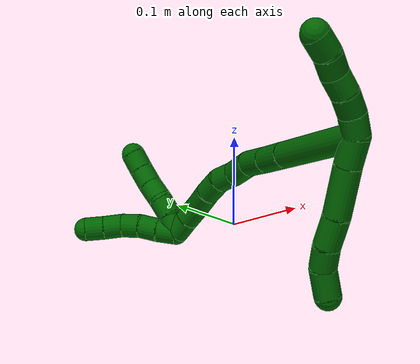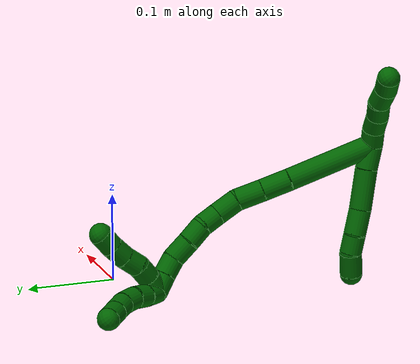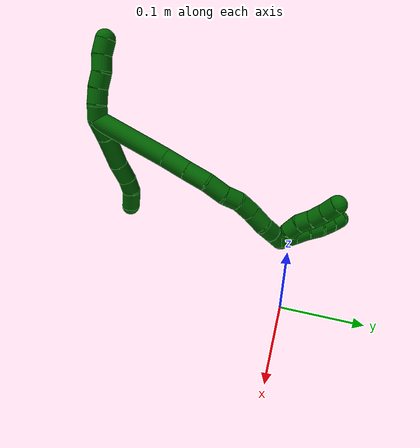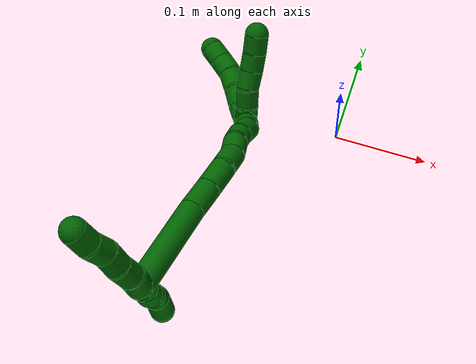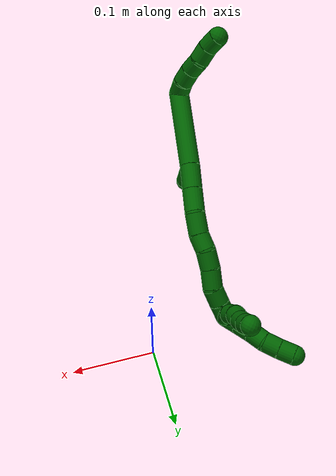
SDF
<sdf version="1.7">
 <world name="default">
  <model name="6">
   <static>0</static>
   <link name="6">
    <collision name="collision-cylinder-e_1_2_8">
     <pose>-0.00848 -0.004877 -0.009178 2.65318 -0.684362 -1.92073</pose>
     <geometry><cylinder><radius>0.0125</radius><length>0.026826</length></cylinder></geometry>
     <surface>
      <friction><ode><mu>1.16</mu><mu2>1.16</mu2><slip1>0</slip1><slip2>0</slip2></ode></friction>
      <contact><ode><kp>1e+06</kp><kd>1</kd><max_vel>0</max_vel><min_depth>0.001</min_depth></ode></contact>
     </surface>
    </collision>
    <visual name="visual-cylinder-e_1_2_8">
     <pose>-0.00848 -0.004877 -0.009178 2.65318 -0.684362 -1.92073</pose>
     <geometry><cylinder><radius>0.0125</radius><length>0.026826</length></cylinder></geometry>
     <material><ambient>0 0.392157 0.003922 1</ambient></material>
    </visual>
    <collision name="collision-cylinder-e_2_8_9">
     <pose>-0.031275 -0.019659 -0.033338 2.55744 -0.672933 -1.72145</pose>
     <geometry><cylinder><radius>0.0125</radius><length>0.045937</length></cylinder></geometry>
     <surface>
      <friction><ode><mu>1.16</mu><mu2>1.16</mu2><slip1>0</slip1><slip2>0</slip2></ode></friction>
      <contact><ode><kp>1e+06</kp><kd>1</kd><max_vel>0</max_vel><min_depth>0.001</min_depth></ode></contact>
     </surface>
    </collision>
    <visual name="visual-cylinder-e_2_8_9">
     <pose>-0.031275 -0.019659 -0.033338 2.55744 -0.672933 -1.72145</pose>
     <geometry><cylinder><radius>0.0125</radius><length>0.045937</length></cylinder></geometry>
     <material><ambient>0 0.392157 0.003922 1</ambient></material>
    </visual>
    <collision name="collision-cylinder-e_3_9_10">
     <pose>-0.055274 -0.034548 -0.057941 2.66361 -0.729369 -2.00548</pose>
     <geometry><cylinder><radius>0.0125</radius><length>0.029061</length></cylinder></geometry>
     <surface>
      <friction><ode><mu>1.16</mu><mu2>1.16</mu2><slip1>0</slip1><slip2>0</slip2></ode></friction>
      <contact><ode><kp>1e+06</kp><kd>1</kd><max_vel>0</max_vel><min_depth>0.001</min_depth></ode></contact>
     </surface>
    </collision>
    <visual name="visual-cylinder-e_3_9_10">
     <pose>-0.055274 -0.034548 -0.057941 2.66361 -0.729369 -2.00548</pose>
     <geometry><cylinder><radius>0.0125</radius><length>0.029061</length></cylinder></geometry>
     <material><ambient>0 0.392157 0.003922 1</ambient></material>
    </visual>
    <collision name="collision-cylinder-e_4_10_11">
     <pose>-0.070787 -0.043954 -0.075253 2.61981 -0.581268 -1.68419</pose>
     <geometry><cylinder><radius>0.0125</radius><length>0.021234</length></cylinder></geometry>
     <surface>
      <friction><ode><mu>1.16</mu><mu2>1.16</mu2><slip1>0</slip1><slip2>0</slip2></ode></friction>
      <contact><ode><kp>1e+06</kp><kd>1</kd><max_vel>0</max_vel><min_depth>0.001</min_depth></ode></contact>
     </surface>
    </collision>
    <visual name="visual-cylinder-e_4_10_11">
     <pose>-0.070787 -0.043954 -0.075253 2.61981 -0.581268 -1.68419</pose>
     <geometry><cylinder><radius>0.0125</radius><length>0.021234</length></cylinder></geometry>
     <material><ambient>0 0.392157 0.003922 1</ambient></material>
    </visual>
    <collision name="collision-cylinder-e_5_11_6">
     <pose>-0.081423 -0.057515 -0.091598 2.32888 -0.364864 -0.810045</pose>
     <geometry><cylinder><radius>0.0125</radius><length>0.026942</length></cylinder></geometry>
     <surface>
      <friction><ode><mu>1.16</mu><mu2>1.16</mu2><slip1>0</slip1><slip2>0</slip2></ode></friction>
      <contact><ode><kp>1e+06</kp><kd>1</kd><max_vel>0</max_vel><min_depth>0.001</min_depth></ode></contact>
     </surface>
    </collision>
    <visual name="visual-cylinder-e_5_11_6">
     <pose>-0.081423 -0.057515 -0.091598 2.32888 -0.364864 -0.810045</pose>
     <geometry><cylinder><radius>0.0125</radius><length>0.026942</length></cylinder></geometry>
     <material><ambient>0 0.392157 0.003922 1</ambient></material>
    </visual>
    <collision name="collision-cylinder-e_1_2_12">
     <pose>0.002882 0.006077 0.0074 -0.687482 0.292389 -0.105316</pose>
     <geometry><cylinder><radius>0.0125</radius><length>0.02</length></cylinder></geometry>
     <surface>
      <friction><ode><mu>1.16</mu><mu2>1.16</mu2><slip1>0</slip1><slip2>0</slip2></ode></friction>
      <contact><ode><kp>1e+06</kp><kd>1</kd><max_vel>0</max_vel><min_depth>0.001</min_depth></ode></contact>
     </surface>
    </collision>
    <visual name="visual-cylinder-e_1_2_12">
     <pose>0.002882 0.006077 0.0074 -0.687482 0.292389 -0.105316</pose>
     <geometry><cylinder><radius>0.0125</radius><length>0.02</length></cylinder></geometry>
     <material><ambient>0 0.392157 0.003922 1</ambient></material>
    </visual>
    <collision name="collision-cylinder-e_2_12_13">
     <pose>0.00653 0.017582 0.023164 -0.575786 0.076614 -0.022697</pose>
     <geometry><cylinder><radius>0.0125</radius><length>0.02</length></cylinder></geometry>
     <surface>
      <friction><ode><mu>1.16</mu><mu2>1.16</mu2><slip1>0</slip1><slip2>0</slip2></ode></friction>
      <contact><ode><kp>1e+06</kp><kd>1</kd><max_vel>0</max_vel><min_depth>0.001</min_depth></ode></contact>
     </surface>
    </collision>
    <visual name="visual-cylinder-e_2_12_13">
     <pose>0.00653 0.017582 0.023164 -0.575786 0.076614 -0.022697</pose>
     <geometry><cylinder><radius>0.0125</radius><length>0.02</length></cylinder></geometry>
     <material><ambient>0 0.392157 0.003922 1</ambient></material>
    </visual>
    <collision name="collision-cylinder-e_3_13_14">
     <pose>0.007266 0.029694 0.038966 -0.731874 -0.003006 0.001152</pose>
     <geometry><cylinder><radius>0.0125</radius><length>0.02</length></cylinder></geometry>
     <surface>
      <friction><ode><mu>1.16</mu><mu2>1.16</mu2><slip1>0</slip1><slip2>0</slip2></ode></friction>
      <contact><ode><kp>1e+06</kp><kd>1</kd><max_vel>0</max_vel><min_depth>0.001</min_depth></ode></contact>
     </surface>
    </collision>
    <visual name="visual-cylinder-e_3_13_14">
     <pose>0.007266 0.029694 0.038966 -0.731874 -0.003006 0.001152</pose>
     <geometry><cylinder><radius>0.0125</radius><length>0.02</length></cylinder></geometry>
     <material><ambient>0 0.392157 0.003922 1</ambient></material>
    </visual>
    <collision name="collision-cylinder-e_4_14_15">
     <pose>0.007522 0.040691 0.055422 -0.446277 0.028613 -0.006493</pose>
     <geometry><cylinder><radius>0.0125</radius><length>0.02</length></cylinder></geometry>
     <surface>
      <friction><ode><mu>1.16</mu><mu2>1.16</mu2><slip1>0</slip1><slip2>0</slip2></ode></friction>
      <contact><ode><kp>1e+06</kp><kd>1</kd><max_vel>0</max_vel><min_depth>0.001</min_depth></ode></contact>
     </surface>
    </collision>
    <visual name="visual-cylinder-e_4_14_15">
     <pose>0.007522 0.040691 0.055422 -0.446277 0.028613 -0.006493</pose>
     <geometry><cylinder><radius>0.0125</radius><length>0.02</length></cylinder></geometry>
     <material><ambient>0 0.392157 0.003922 1</ambient></material>
    </visual>
    <collision name="collision-cylinder-e_5_15_5">
     <pose>0.006995 0.051127 0.072304 -0.661463 -0.081387 0.027957</pose>
     <geometry><cylinder><radius>0.0125</radius><length>0.02</length></cylinder></geometry>
     <surface>
      <friction><ode><mu>1.16</mu><mu2>1.16</mu2><slip1>0</slip1><slip2>0</slip2></ode></friction>
      <contact><ode><kp>1e+06</kp><kd>1</kd><max_vel>0</max_vel><min_depth>0.001</min_depth></ode></contact>
     </surface>
    </collision>
    <visual name="visual-cylinder-e_5_15_5">
     <pose>0.006995 0.051127 0.072304 -0.661463 -0.081387 0.027957</pose>
     <geometry><cylinder><radius>0.0125</radius><length>0.02</length></cylinder></geometry>
     <material><ambient>0 0.392157 0.003922 1</ambient></material>
    </visual>
    <collision name="collision-cylinder-e_1_2_16">
     <pose>-0.018362 0.02745 -0.037693 -2.51216 -0.375138 1.05571</pose>
     <geometry><cylinder><radius>0.0125</radius><length>0.100228</length></cylinder></geometry>
     <surface>
      <friction><ode><mu>1.16</mu><mu2>1.16</mu2><slip1>0</slip1><slip2>0</slip2></ode></friction>
      <contact><ode><kp>1e+06</kp><kd>1</kd><max_vel>0</max_vel><min_depth>0.001</min_depth></ode></contact>
     </surface>
    </collision>
    <visual name="visual-cylinder-e_1_2_16">
     <pose>-0.018362 0.02745 -0.037693 -2.51216 -0.375138 1.05571</pose>
     <geometry><cylinder><radius>0.0125</radius><length>0.100228</length></cylinder></geometry>
     <material><ambient>0 0.392157 0.003922 1</ambient></material>
    </visual>
    <collision name="collision-cylinder-e_2_16_17">
     <pose>-0.041928 0.063525 -0.087747 -2.53237 -0.332464 0.980424</pose>
     <geometry><cylinder><radius>0.0125</radius><length>0.031893</length></cylinder></geometry>
     <surface>
      <friction><ode><mu>1.16</mu><mu2>1.16</mu2><slip1>0</slip1><slip2>0</slip2></ode></friction>
      <contact><ode><kp>1e+06</kp><kd>1</kd><max_vel>0</max_vel><min_depth>0.001</min_depth></ode></contact>
     </surface>
    </collision>
    <visual name="visual-cylinder-e_2_16_17">
     <pose>-0.041928 0.063525 -0.087747 -2.53237 -0.332464 0.980424</pose>
     <geometry><cylinder><radius>0.0125</radius><length>0.031893</length></cylinder></geometry>
     <material><ambient>0 0.392157 0.003922 1</ambient></material>
    </visual>
    <collision name="collision-cylinder-e_3_17_18">
     <pose>-0.052098 0.080693 -0.111747 -2.50838 -0.331267 0.943588</pose>
     <geometry><cylinder><radius>0.0125</radius><length>0.030534</length></cylinder></geometry>
     <surface>
      <friction><ode><mu>1.16</mu><mu2>1.16</mu2><slip1>0</slip1><slip2>0</slip2></ode></friction>
      <contact><ode><kp>1e+06</kp><kd>1</kd><max_vel>0</max_vel><min_depth>0.001</min_depth></ode></contact>
     </surface>
    </collision>
    <visual name="visual-cylinder-e_3_17_18">
     <pose>-0.052098 0.080693 -0.111747 -2.50838 -0.331267 0.943588</pose>
     <geometry><cylinder><radius>0.0125</radius><length>0.030534</length></cylinder></geometry>
     <material><ambient>0 0.392157 0.003922 1</ambient></material>
    </visual>
    <collision name="collision-cylinder-e_4_18_19">
     <pose>-0.063801 0.094046 -0.133989 -2.7158 -0.524522 1.78568</pose>
     <geometry><cylinder><radius>0.0125</radius><length>0.026905</length></cylinder></geometry>
     <surface>
      <friction><ode><mu>1.16</mu><mu2>1.16</mu2><slip1>0</slip1><slip2>0</slip2></ode></friction>
      <contact><ode><kp>1e+06</kp><kd>1</kd><max_vel>0</max_vel><min_depth>0.001</min_depth></ode></contact>
     </surface>
    </collision>
    <visual name="visual-cylinder-e_4_18_19">
     <pose>-0.063801 0.094046 -0.133989 -2.7158 -0.524522 1.78568</pose>
     <geometry><cylinder><radius>0.0125</radius><length>0.026905</length></cylinder></geometry>
     <material><ambient>0 0.392157 0.003922 1</ambient></material>
    </visual>
    <collision name="collision-cylinder-e_5_19_20">
     <pose>-0.077299 0.10352 -0.151169 -2.52453 -0.697901 1.70284</pose>
     <geometry><cylinder><radius>0.0125</radius><length>0.021045</length></cylinder></geometry>
     <surface>
      <friction><ode><mu>1.16</mu><mu2>1.16</mu2><slip1>0</slip1><slip2>0</slip2></ode></friction>
      <contact><ode><kp>1e+06</kp><kd>1</kd><max_vel>0</max_vel><min_depth>0.001</min_depth></ode></contact>
     </surface>
    </collision>
    <visual name="visual-cylinder-e_5_19_20">
     <pose>-0.077299 0.10352 -0.151169 -2.52453 -0.697901 1.70284</pose>
     <geometry><cylinder><radius>0.0125</radius><length>0.021045</length></cylinder></geometry>
     <material><ambient>0 0.392157 0.003922 1</ambient></material>
    </visual>
    <collision name="collision-cylinder-e_6_20_21">
     <pose>-0.091291 0.110055 -0.166446 -2.92991 -0.682188 2.55998</pose>
     <geometry><cylinder><radius>0.0125</radius><length>0.022933</length></cylinder></geometry>
     <surface>
      <friction><ode><mu>1.16</mu><mu2>1.16</mu2><slip1>0</slip1><slip2>0</slip2></ode></friction>
      <contact><ode><kp>1e+06</kp><kd>1</kd><max_vel>0</max_vel><min_depth>0.001</min_depth></ode></contact>
     </surface>
    </collision>
    <visual name="visual-cylinder-e_6_20_21">
     <pose>-0.091291 0.110055 -0.166446 -2.92991 -0.682188 2.55998</pose>
     <geometry><cylinder><radius>0.0125</radius><length>0.022933</length></cylinder></geometry>
     <material><ambient>0 0.392157 0.003922 1</ambient></material>
    </visual>
    <collision name="collision-cylinder-e_7_21_22">
     <pose>-0.105222 0.113646 -0.185507 -2.977 -0.568013 2.59079</pose>
     <geometry><cylinder><radius>0.0125</radius><length>0.024916</length></cylinder></geometry>
     <surface>
      <friction><ode><mu>1.16</mu><mu2>1.16</mu2><slip1>0</slip1><slip2>0</slip2></ode></friction>
      <contact><ode><kp>1e+06</kp><kd>1</kd><max_vel>0</max_vel><min_depth>0.001</min_depth></ode></contact>
     </surface>
    </collision>
    <visual name="visual-cylinder-e_7_21_22">
     <pose>-0.105222 0.113646 -0.185507 -2.977 -0.568013 2.59079</pose>
     <geometry><cylinder><radius>0.0125</radius><length>0.024916</length></cylinder></geometry>
     <material><ambient>0 0.392157 0.003922 1</ambient></material>
    </visual>
    <collision name="collision-cylinder-e_8_22_23">
     <pose>-0.120133 0.115809 -0.202453 -3.07456 -0.893587 3.00186</pose>
     <geometry><cylinder><radius>0.0125</radius><length>0.021069</length></cylinder></geometry>
     <surface>
      <friction><ode><mu>1.16</mu><mu2>1.16</mu2><slip1>0</slip1><slip2>0</slip2></ode></friction>
      <contact><ode><kp>1e+06</kp><kd>1</kd><max_vel>0</max_vel><min_depth>0.001</min_depth></ode></contact>
     </surface>
    </collision>
    <visual name="visual-cylinder-e_8_22_23">
     <pose>-0.120133 0.115809 -0.202453 -3.07456 -0.893587 3.00186</pose>
     <geometry><cylinder><radius>0.0125</radius><length>0.021069</length></cylinder></geometry>
     <material><ambient>0 0.392157 0.003922 1</ambient></material>
    </visual>
    <collision name="collision-cylinder-e_9_23_1">
     <pose>-0.136492 0.116199 -0.215239 3.13311 -0.920378 -3.12448</pose>
     <geometry><cylinder><radius>0.0125</radius><length>0.020478</length></cylinder></geometry>
     <surface>
      <friction><ode><mu>1.16</mu><mu2>1.16</mu2><slip1>0</slip1><slip2>0</slip2></ode></friction>
      <contact><ode><kp>1e+06</kp><kd>1</kd><max_vel>0</max_vel><min_depth>0.001</min_depth></ode></contact>
     </surface>
    </collision>
    <visual name="visual-cylinder-e_9_23_1">
     <pose>-0.136492 0.116199 -0.215239 3.13311 -0.920378 -3.12448</pose>
     <geometry><cylinder><radius>0.0125</radius><length>0.020478</length></cylinder></geometry>
     <material><ambient>0 0.392157 0.003922 1</ambient></material>
    </visual>
    <collision name="collision-cylinder-e_1_1_24">
     <pose>-0.141924 0.125082 -0.217865 -1.19035 0.275102 -0.186903</pose>
     <geometry><cylinder><radius>0.0125</radius><length>0.02</length></cylinder></geometry>
     <surface>
      <friction><ode><mu>1.16</mu><mu2>1.16</mu2><slip1>0</slip1><slip2>0</slip2></ode></friction>
      <contact><ode><kp>1e+06</kp><kd>1</kd><max_vel>0</max_vel><min_depth>0.001</min_depth></ode></contact>
     </surface>
    </collision>
    <visual name="visual-cylinder-e_1_1_24">
     <pose>-0.141924 0.125082 -0.217865 -1.19035 0.275102 -0.186903</pose>
     <geometry><cylinder><radius>0.0125</radius><length>0.02</length></cylinder></geometry>
     <material><ambient>0 0.392157 0.003922 1</ambient></material>
    </visual>
    <collision name="collision-cylinder-e_2_24_25">
     <pose>-0.138257 0.143628 -0.211695 -1.30692 0.095131 -0.072863</pose>
     <geometry><cylinder><radius>0.0125</radius><length>0.02</length></cylinder></geometry>
     <surface>
      <friction><ode><mu>1.16</mu><mu2>1.16</mu2><slip1>0</slip1><slip2>0</slip2></ode></friction>
      <contact><ode><kp>1e+06</kp><kd>1</kd><max_vel>0</max_vel><min_depth>0.001</min_depth></ode></contact>
     </surface>
    </collision>
    <visual name="visual-cylinder-e_2_24_25">
     <pose>-0.138257 0.143628 -0.211695 -1.30692 0.095131 -0.072863</pose>
     <geometry><cylinder><radius>0.0125</radius><length>0.02</length></cylinder></geometry>
     <material><ambient>0 0.392157 0.003922 1</ambient></material>
    </visual>
    <collision name="collision-cylinder-e_3_25_26">
     <pose>-0.13673 0.163214 -0.209475 -1.60853 0.057786 -0.060008</pose>
     <geometry><cylinder><radius>0.0125</radius><length>0.02</length></cylinder></geometry>
     <surface>
      <friction><ode><mu>1.16</mu><mu2>1.16</mu2><slip1>0</slip1><slip2>0</slip2></ode></friction>
      <contact><ode><kp>1e+06</kp><kd>1</kd><max_vel>0</max_vel><min_depth>0.001</min_depth></ode></contact>
     </surface>
    </collision>
    <visual name="visual-cylinder-e_3_25_26">
     <pose>-0.13673 0.163214 -0.209475 -1.60853 0.057786 -0.060008</pose>
     <geometry><cylinder><radius>0.0125</radius><length>0.02</length></cylinder></geometry>
     <material><ambient>0 0.392157 0.003922 1</ambient></material>
    </visual>
    <collision name="collision-cylinder-e_4_26_27">
     <pose>-0.134929 0.183069 -0.208896 -1.4744 0.12265 -0.111387</pose>
     <geometry><cylinder><radius>0.0125</radius><length>0.02</length></cylinder></geometry>
     <surface>
      <friction><ode><mu>1.16</mu><mu2>1.16</mu2><slip1>0</slip1><slip2>0</slip2></ode></friction>
      <contact><ode><kp>1e+06</kp><kd>1</kd><max_vel>0</max_vel><min_depth>0.001</min_depth></ode></contact>
     </surface>
    </collision>
    <visual name="visual-cylinder-e_4_26_27">
     <pose>-0.134929 0.183069 -0.208896 -1.4744 0.12265 -0.111387</pose>
     <geometry><cylinder><radius>0.0125</radius><length>0.02</length></cylinder></geometry>
     <material><ambient>0 0.392157 0.003922 1</ambient></material>
    </visual>
    <collision name="collision-cylinder-e_5_27_4">
     <pose>-0.132192 0.202649 -0.206043 -1.37755 0.151901 -0.125134</pose>
     <geometry><cylinder><radius>0.0125</radius><length>0.02</length></cylinder></geometry>
     <surface>
      <friction><ode><mu>1.16</mu><mu2>1.16</mu2><slip1>0</slip1><slip2>0</slip2></ode></friction>
      <contact><ode><kp>1e+06</kp><kd>1</kd><max_vel>0</max_vel><min_depth>0.001</min_depth></ode></contact>
     </surface>
    </collision>
    <visual name="visual-cylinder-e_5_27_4">
     <pose>-0.132192 0.202649 -0.206043 -1.37755 0.151901 -0.125134</pose>
     <geometry><cylinder><radius>0.0125</radius><length>0.02</length></cylinder></geometry>
     <material><ambient>0 0.392157 0.003922 1</ambient></material>
    </visual>
    <collision name="collision-cylinder-e_1_1_28">
     <pose>-0.151386 0.123527 -0.221581 -1.59012 -0.740349 0.753476</pose>
     <geometry><cylinder><radius>0.0125</radius><length>0.02</length></cylinder></geometry>
     <surface>
      <friction><ode><mu>1.16</mu><mu2>1.16</mu2><slip1>0</slip1><slip2>0</slip2></ode></friction>
      <contact><ode><kp>1e+06</kp><kd>1</kd><max_vel>0</max_vel><min_depth>0.001</min_depth></ode></contact>
     </surface>
    </collision>
    <visual name="visual-cylinder-e_1_1_28">
     <pose>-0.151386 0.123527 -0.221581 -1.59012 -0.740349 0.753476</pose>
     <geometry><cylinder><radius>0.0125</radius><length>0.02</length></cylinder></geometry>
     <material><ambient>0 0.392157 0.003922 1</ambient></material>
    </visual>
    <collision name="collision-cylinder-e_2_28_29">
     <pose>-0.164148 0.138894 -0.221863 -1.58828 -0.645664 0.656257</pose>
     <geometry><cylinder><radius>0.0125</radius><length>0.02</length></cylinder></geometry>
     <surface>
      <friction><ode><mu>1.16</mu><mu2>1.16</mu2><slip1>0</slip1><slip2>0</slip2></ode></friction>
      <contact><ode><kp>1e+06</kp><kd>1</kd><max_vel>0</max_vel><min_depth>0.001</min_depth></ode></contact>
     </surface>
    </collision>
    <visual name="visual-cylinder-e_2_28_29">
     <pose>-0.164148 0.138894 -0.221863 -1.58828 -0.645664 0.656257</pose>
     <geometry><cylinder><radius>0.0125</radius><length>0.02</length></cylinder></geometry>
     <material><ambient>0 0.392157 0.003922 1</ambient></material>
    </visual>
    <collision name="collision-cylinder-e_3_29_30">
     <pose>-0.177417 0.153691 -0.22301 -1.71749 -0.811296 0.923432</pose>
     <geometry><cylinder><radius>0.0125</radius><length>0.02</length></cylinder></geometry>
     <surface>
      <friction><ode><mu>1.16</mu><mu2>1.16</mu2><slip1>0</slip1><slip2>0</slip2></ode></friction>
      <contact><ode><kp>1e+06</kp><kd>1</kd><max_vel>0</max_vel><min_depth>0.001</min_depth></ode></contact>
     </surface>
    </collision>
    <visual name="visual-cylinder-e_3_29_30">
     <pose>-0.177417 0.153691 -0.22301 -1.71749 -0.811296 0.923432</pose>
     <geometry><cylinder><radius>0.0125</radius><length>0.02</length></cylinder></geometry>
     <material><ambient>0 0.392157 0.003922 1</ambient></material>
    </visual>
    <collision name="collision-cylinder-e_4_30_31">
     <pose>-0.193266 0.165599 -0.22367 -1.50308 -1.03467 0.97744</pose>
     <geometry><cylinder><radius>0.0125</radius><length>0.02</length></cylinder></geometry>
     <surface>
      <friction><ode><mu>1.16</mu><mu2>1.16</mu2><slip1>0</slip1><slip2>0</slip2></ode></friction>
      <contact><ode><kp>1e+06</kp><kd>1</kd><max_vel>0</max_vel><min_depth>0.001</min_depth></ode></contact>
     </surface>
    </collision>
    <visual name="visual-cylinder-e_4_30_31">
     <pose>-0.193266 0.165599 -0.22367 -1.50308 -1.03467 0.97744</pose>
     <geometry><cylinder><radius>0.0125</radius><length>0.02</length></cylinder></geometry>
     <material><ambient>0 0.392157 0.003922 1</ambient></material>
    </visual>
    <collision name="collision-cylinder-e_5_31_3">
     <pose>-0.210336 0.175919 -0.22236 -1.38819 -1.01085 0.863161</pose>
     <geometry><cylinder><radius>0.0125</radius><length>0.02</length></cylinder></geometry>
     <surface>
      <friction><ode><mu>1.16</mu><mu2>1.16</mu2><slip1>0</slip1><slip2>0</slip2></ode></friction>
      <contact><ode><kp>1e+06</kp><kd>1</kd><max_vel>0</max_vel><min_depth>0.001</min_depth></ode></contact>
     </surface>
    </collision>
    <visual name="visual-cylinder-e_5_31_3">
     <pose>-0.210336 0.175919 -0.22236 -1.38819 -1.01085 0.863161</pose>
     <geometry><cylinder><radius>0.0125</radius><length>0.02</length></cylinder></geometry>
     <material><ambient>0 0.392157 0.003922 1</ambient></material>
    </visual>
    <collision name="collision-sphere-3">
     <pose>-0.218809 0.181142 -0.221396 0 -0 0</pose>
     <geometry><sphere><radius>0.0125</radius></sphere></geometry>
     <surface>
      <friction><ode><mu>1.16</mu><mu2>1.16</mu2><slip1>0</slip1><slip2>0</slip2></ode></friction>
      <contact><ode><kp>1e+06</kp><kd>1</kd><max_vel>0</max_vel><min_depth>0.001</min_depth></ode></contact>
     </surface>
    </collision>
    <visual name="visual-sphere-3">
     <pose>-0.218809 0.181142 -0.221396 0 -0 0</pose>
     <geometry><sphere><radius>0.0125</radius></sphere></geometry>
     <material><ambient>0 0.392157 0.003922 1</ambient></material>
    </visual>
    <collision name="collision-sphere-31">
     <pose>-0.201863 0.170696 -0.223325 0 -0 0</pose>
     <geometry><sphere><radius>0.0125</radius></sphere></geometry>
     <surface>
      <friction><ode><mu>1.16</mu><mu2>1.16</mu2><slip1>0</slip1><slip2>0</slip2></ode></friction>
      <contact><ode><kp>1e+06</kp><kd>1</kd><max_vel>0</max_vel><min_depth>0.001</min_depth></ode></contact>
     </surface>
    </collision>
    <visual name="visual-sphere-31">
     <pose>-0.201863 0.170696 -0.223325 0 -0 0</pose>
     <geometry><sphere><radius>0.0125</radius></sphere></geometry>
     <material><ambient>0 0.392157 0.003922 1</ambient></material>
    </visual>
    <collision name="collision-sphere-30">
     <pose>-0.184669 0.160503 -0.224016 0 -0 0</pose>
     <geometry><sphere><radius>0.0125</radius></sphere></geometry>
     <surface>
      <friction><ode><mu>1.16</mu><mu2>1.16</mu2><slip1>0</slip1><slip2>0</slip2></ode></friction>
      <contact><ode><kp>1e+06</kp><kd>1</kd><max_vel>0</max_vel><min_depth>0.001</min_depth></ode></contact>
     </surface>
    </collision>
    <visual name="visual-sphere-30">
     <pose>-0.184669 0.160503 -0.224016 0 -0 0</pose>
     <geometry><sphere><radius>0.0125</radius></sphere></geometry>
     <material><ambient>0 0.392157 0.003922 1</ambient></material>
    </visual>
    <collision name="collision-sphere-29">
     <pose>-0.170166 0.14688 -0.222003 0 -0 0</pose>
     <geometry><sphere><radius>0.0125</radius></sphere></geometry>
     <surface>
      <friction><ode><mu>1.16</mu><mu2>1.16</mu2><slip1>0</slip1><slip2>0</slip2></ode></friction>
      <contact><ode><kp>1e+06</kp><kd>1</kd><max_vel>0</max_vel><min_depth>0.001</min_depth></ode></contact>
     </surface>
    </collision>
    <visual name="visual-sphere-29">
     <pose>-0.170166 0.14688 -0.222003 0 -0 0</pose>
     <geometry><sphere><radius>0.0125</radius></sphere></geometry>
     <material><ambient>0 0.392157 0.003922 1</ambient></material>
    </visual>
    <collision name="collision-sphere-28">
     <pose>-0.158131 0.130908 -0.221724 0 -0 0</pose>
     <geometry><sphere><radius>0.0125</radius></sphere></geometry>
     <surface>
      <friction><ode><mu>1.16</mu><mu2>1.16</mu2><slip1>0</slip1><slip2>0</slip2></ode></friction>
      <contact><ode><kp>1e+06</kp><kd>1</kd><max_vel>0</max_vel><min_depth>0.001</min_depth></ode></contact>
     </surface>
    </collision>
    <visual name="visual-sphere-28">
     <pose>-0.158131 0.130908 -0.221724 0 -0 0</pose>
     <geometry><sphere><radius>0.0125</radius></sphere></geometry>
     <material><ambient>0 0.392157 0.003922 1</ambient></material>
    </visual>
    <collision name="collision-sphere-4">
     <pose>-0.130679 0.21235 -0.204144 0 -0 0</pose>
     <geometry><sphere><radius>0.0125</radius></sphere></geometry>
     <surface>
      <friction><ode><mu>1.16</mu><mu2>1.16</mu2><slip1>0</slip1><slip2>0</slip2></ode></friction>
      <contact><ode><kp>1e+06</kp><kd>1</kd><max_vel>0</max_vel><min_depth>0.001</min_depth></ode></contact>
     </surface>
    </collision>
    <visual name="visual-sphere-4">
     <pose>-0.130679 0.21235 -0.204144 0 -0 0</pose>
     <geometry><sphere><radius>0.0125</radius></sphere></geometry>
     <material><ambient>0 0.392157 0.003922 1</ambient></material>
    </visual>
    <collision name="collision-sphere-27">
     <pose>-0.133706 0.192948 -0.207941 0 -0 0</pose>
     <geometry><sphere><radius>0.0125</radius></sphere></geometry>
     <surface>
      <friction><ode><mu>1.16</mu><mu2>1.16</mu2><slip1>0</slip1><slip2>0</slip2></ode></friction>
      <contact><ode><kp>1e+06</kp><kd>1</kd><max_vel>0</max_vel><min_depth>0.001</min_depth></ode></contact>
     </surface>
    </collision>
    <visual name="visual-sphere-27">
     <pose>-0.133706 0.192948 -0.207941 0 -0 0</pose>
     <geometry><sphere><radius>0.0125</radius></sphere></geometry>
     <material><ambient>0 0.392157 0.003922 1</ambient></material>
    </visual>
    <collision name="collision-sphere-26">
     <pose>-0.136152 0.173191 -0.209852 0 -0 0</pose>
     <geometry><sphere><radius>0.0125</radius></sphere></geometry>
     <surface>
      <friction><ode><mu>1.16</mu><mu2>1.16</mu2><slip1>0</slip1><slip2>0</slip2></ode></friction>
      <contact><ode><kp>1e+06</kp><kd>1</kd><max_vel>0</max_vel><min_depth>0.001</min_depth></ode></contact>
     </surface>
    </collision>
    <visual name="visual-sphere-26">
     <pose>-0.136152 0.173191 -0.209852 0 -0 0</pose>
     <geometry><sphere><radius>0.0125</radius></sphere></geometry>
     <material><ambient>0 0.392157 0.003922 1</ambient></material>
    </visual>
    <collision name="collision-sphere-25">
     <pose>-0.137308 0.153238 -0.209098 0 -0 0</pose>
     <geometry><sphere><radius>0.0125</radius></sphere></geometry>
     <surface>
      <friction><ode><mu>1.16</mu><mu2>1.16</mu2><slip1>0</slip1><slip2>0</slip2></ode></friction>
      <contact><ode><kp>1e+06</kp><kd>1</kd><max_vel>0</max_vel><min_depth>0.001</min_depth></ode></contact>
     </surface>
    </collision>
    <visual name="visual-sphere-25">
     <pose>-0.137308 0.153238 -0.209098 0 -0 0</pose>
     <geometry><sphere><radius>0.0125</radius></sphere></geometry>
     <material><ambient>0 0.392157 0.003922 1</ambient></material>
    </visual>
    <collision name="collision-sphere-24">
     <pose>-0.139207 0.134018 -0.214291 0 -0 0</pose>
     <geometry><sphere><radius>0.0125</radius></sphere></geometry>
     <surface>
      <friction><ode><mu>1.16</mu><mu2>1.16</mu2><slip1>0</slip1><slip2>0</slip2></ode></friction>
      <contact><ode><kp>1e+06</kp><kd>1</kd><max_vel>0</max_vel><min_depth>0.001</min_depth></ode></contact>
     </surface>
    </collision>
    <visual name="visual-sphere-24">
     <pose>-0.139207 0.134018 -0.214291 0 -0 0</pose>
     <geometry><sphere><radius>0.0125</radius></sphere></geometry>
     <material><ambient>0 0.392157 0.003922 1</ambient></material>
    </visual>
    <collision name="collision-sphere-1">
     <pose>-0.14464 0.116146 -0.221439 0 -0 0</pose>
     <geometry><sphere><radius>0.0125</radius></sphere></geometry>
     <surface>
      <friction><ode><mu>1.16</mu><mu2>1.16</mu2><slip1>0</slip1><slip2>0</slip2></ode></friction>
      <contact><ode><kp>1e+06</kp><kd>1</kd><max_vel>0</max_vel><min_depth>0.001</min_depth></ode></contact>
     </surface>
    </collision>
    <visual name="visual-sphere-1">
     <pose>-0.14464 0.116146 -0.221439 0 -0 0</pose>
     <geometry><sphere><radius>0.0125</radius></sphere></geometry>
     <material><ambient>0 0.392157 0.003922 1</ambient></material>
    </visual>
    <collision name="collision-sphere-23">
     <pose>-0.128343 0.116251 -0.209039 0 -0 0</pose>
     <geometry><sphere><radius>0.0125</radius></sphere></geometry>
     <surface>
      <friction><ode><mu>1.16</mu><mu2>1.16</mu2><slip1>0</slip1><slip2>0</slip2></ode></friction>
      <contact><ode><kp>1e+06</kp><kd>1</kd><max_vel>0</max_vel><min_depth>0.001</min_depth></ode></contact>
     </surface>
    </collision>
    <visual name="visual-sphere-23">
     <pose>-0.128343 0.116251 -0.209039 0 -0 0</pose>
     <geometry><sphere><radius>0.0125</radius></sphere></geometry>
     <material><ambient>0 0.392157 0.003922 1</ambient></material>
    </visual>
    <collision name="collision-sphere-22">
     <pose>-0.111924 0.115367 -0.195867 0 -0 0</pose>
     <geometry><sphere><radius>0.0125</radius></sphere></geometry>
     <surface>
      <friction><ode><mu>1.16</mu><mu2>1.16</mu2><slip1>0</slip1><slip2>0</slip2></ode></friction>
      <contact><ode><kp>1e+06</kp><kd>1</kd><max_vel>0</max_vel><min_depth>0.001</min_depth></ode></contact>
     </surface>
    </collision>
    <visual name="visual-sphere-22">
     <pose>-0.111924 0.115367 -0.195867 0 -0 0</pose>
     <geometry><sphere><radius>0.0125</radius></sphere></geometry>
     <material><ambient>0 0.392157 0.003922 1</ambient></material>
    </visual>
    <collision name="collision-sphere-21">
     <pose>-0.09852 0.111925 -0.175147 0 -0 0</pose>
     <geometry><sphere><radius>0.0125</radius></sphere></geometry>
     <surface>
      <friction><ode><mu>1.16</mu><mu2>1.16</mu2><slip1>0</slip1><slip2>0</slip2></ode></friction>
      <contact><ode><kp>1e+06</kp><kd>1</kd><max_vel>0</max_vel><min_depth>0.001</min_depth></ode></contact>
     </surface>
    </collision>
    <visual name="visual-sphere-21">
     <pose>-0.09852 0.111925 -0.175147 0 -0 0</pose>
     <geometry><sphere><radius>0.0125</radius></sphere></geometry>
     <material><ambient>0 0.392157 0.003922 1</ambient></material>
    </visual>
    <collision name="collision-sphere-6">
     <pose>-0.08623 -0.066653 -0.10025 0 -0 0</pose>
     <geometry><sphere><radius>0.0125</radius></sphere></geometry>
     <surface>
      <friction><ode><mu>1.16</mu><mu2>1.16</mu2><slip1>0</slip1><slip2>0</slip2></ode></friction>
      <contact><ode><kp>1e+06</kp><kd>1</kd><max_vel>0</max_vel><min_depth>0.001</min_depth></ode></contact>
     </surface>
    </collision>
    <visual name="visual-sphere-6">
     <pose>-0.08623 -0.066653 -0.10025 0 -0 0</pose>
     <geometry><sphere><radius>0.0125</radius></sphere></geometry>
     <material><ambient>0 0.392157 0.003922 1</ambient></material>
    </visual>
    <collision name="collision-sphere-11">
     <pose>-0.076616 -0.048377 -0.082946 0 -0 0</pose>
     <geometry><sphere><radius>0.0125</radius></sphere></geometry>
     <surface>
      <friction><ode><mu>1.16</mu><mu2>1.16</mu2><slip1>0</slip1><slip2>0</slip2></ode></friction>
      <contact><ode><kp>1e+06</kp><kd>1</kd><max_vel>0</max_vel><min_depth>0.001</min_depth></ode></contact>
     </surface>
    </collision>
    <visual name="visual-sphere-11">
     <pose>-0.076616 -0.048377 -0.082946 0 -0 0</pose>
     <geometry><sphere><radius>0.0125</radius></sphere></geometry>
     <material><ambient>0 0.392157 0.003922 1</ambient></material>
    </visual>
    <collision name="collision-sphere-10">
     <pose>-0.064957 -0.039531 -0.067561 0 -0 0</pose>
     <geometry><sphere><radius>0.0125</radius></sphere></geometry>
     <surface>
      <friction><ode><mu>1.16</mu><mu2>1.16</mu2><slip1>0</slip1><slip2>0</slip2></ode></friction>
      <contact><ode><kp>1e+06</kp><kd>1</kd><max_vel>0</max_vel><min_depth>0.001</min_depth></ode></contact>
     </surface>
    </collision>
    <visual name="visual-sphere-10">
     <pose>-0.064957 -0.039531 -0.067561 0 -0 0</pose>
     <geometry><sphere><radius>0.0125</radius></sphere></geometry>
     <material><ambient>0 0.392157 0.003922 1</ambient></material>
    </visual>
    <collision name="collision-sphere-9">
     <pose>-0.045591 -0.029564 -0.048321 0 -0 0</pose>
     <geometry><sphere><radius>0.0125</radius></sphere></geometry>
     <surface>
      <friction><ode><mu>1.16</mu><mu2>1.16</mu2><slip1>0</slip1><slip2>0</slip2></ode></friction>
      <contact><ode><kp>1e+06</kp><kd>1</kd><max_vel>0</max_vel><min_depth>0.001</min_depth></ode></contact>
     </surface>
    </collision>
    <visual name="visual-sphere-9">
     <pose>-0.045591 -0.029564 -0.048321 0 -0 0</pose>
     <geometry><sphere><radius>0.0125</radius></sphere></geometry>
     <material><ambient>0 0.392157 0.003922 1</ambient></material>
    </visual>
    <collision name="collision-sphere-2">
     <geometry><sphere><radius>0.0125</radius></sphere></geometry>
     <surface>
      <friction><ode><mu>1.16</mu><mu2>1.16</mu2><slip1>0</slip1><slip2>0</slip2></ode></friction>
      <contact><ode><kp>1e+06</kp><kd>1</kd><max_vel>0</max_vel><min_depth>0.001</min_depth></ode></contact>
     </surface>
    </collision>
    <visual name="visual-sphere-2">
     <geometry><sphere><radius>0.0125</radius></sphere></geometry>
     <material><ambient>0 0.392157 0.003922 1</ambient></material>
    </visual>
    <collision name="collision-sphere-19">
     <pose>-0.070538 0.098855 -0.144594 0 -0 0</pose>
     <geometry><sphere><radius>0.0125</radius></sphere></geometry>
     <surface>
      <friction><ode><mu>1.16</mu><mu2>1.16</mu2><slip1>0</slip1><slip2>0</slip2></ode></friction>
      <contact><ode><kp>1e+06</kp><kd>1</kd><max_vel>0</max_vel><min_depth>0.001</min_depth></ode></contact>
     </surface>
    </collision>
    <visual name="visual-sphere-19">
     <pose>-0.070538 0.098855 -0.144594 0 -0 0</pose>
     <geometry><sphere><radius>0.0125</radius></sphere></geometry>
     <material><ambient>0 0.392157 0.003922 1</ambient></material>
    </visual>
    <collision name="collision-sphere-8">
     <pose>-0.016959 -0.009753 -0.018355 0 -0 0</pose>
     <geometry><sphere><radius>0.0125</radius></sphere></geometry>
     <surface>
      <friction><ode><mu>1.16</mu><mu2>1.16</mu2><slip1>0</slip1><slip2>0</slip2></ode></friction>
      <contact><ode><kp>1e+06</kp><kd>1</kd><max_vel>0</max_vel><min_depth>0.001</min_depth></ode></contact>
     </surface>
    </collision>
    <visual name="visual-sphere-8">
     <pose>-0.016959 -0.009753 -0.018355 0 -0 0</pose>
     <geometry><sphere><radius>0.0125</radius></sphere></geometry>
     <material><ambient>0 0.392157 0.003922 1</ambient></material>
    </visual>
    <collision name="collision-sphere-12">
     <pose>0.005765 0.012153 0.014801 0 -0 0</pose>
     <geometry><sphere><radius>0.0125</radius></sphere></geometry>
     <surface>
      <friction><ode><mu>1.16</mu><mu2>1.16</mu2><slip1>0</slip1><slip2>0</slip2></ode></friction>
      <contact><ode><kp>1e+06</kp><kd>1</kd><max_vel>0</max_vel><min_depth>0.001</min_depth></ode></contact>
     </surface>
    </collision>
    <visual name="visual-sphere-12">
     <pose>0.005765 0.012153 0.014801 0 -0 0</pose>
     <geometry><sphere><radius>0.0125</radius></sphere></geometry>
     <material><ambient>0 0.392157 0.003922 1</ambient></material>
    </visual>
    <collision name="collision-sphere-13">
     <pose>0.007296 0.023011 0.031527 0 -0 0</pose>
     <geometry><sphere><radius>0.0125</radius></sphere></geometry>
     <surface>
      <friction><ode><mu>1.16</mu><mu2>1.16</mu2><slip1>0</slip1><slip2>0</slip2></ode></friction>
      <contact><ode><kp>1e+06</kp><kd>1</kd><max_vel>0</max_vel><min_depth>0.001</min_depth></ode></contact>
     </surface>
    </collision>
    <visual name="visual-sphere-13">
     <pose>0.007296 0.023011 0.031527 0 -0 0</pose>
     <geometry><sphere><radius>0.0125</radius></sphere></geometry>
     <material><ambient>0 0.392157 0.003922 1</ambient></material>
    </visual>
    <collision name="collision-sphere-14">
     <pose>0.007235 0.036376 0.046405 0 -0 0</pose>
     <geometry><sphere><radius>0.0125</radius></sphere></geometry>
     <surface>
      <friction><ode><mu>1.16</mu><mu2>1.16</mu2><slip1>0</slip1><slip2>0</slip2></ode></friction>
      <contact><ode><kp>1e+06</kp><kd>1</kd><max_vel>0</max_vel><min_depth>0.001</min_depth></ode></contact>
     </surface>
    </collision>
    <visual name="visual-sphere-14">
     <pose>0.007235 0.036376 0.046405 0 -0 0</pose>
     <geometry><sphere><radius>0.0125</radius></sphere></geometry>
     <material><ambient>0 0.392157 0.003922 1</ambient></material>
    </visual>
    <collision name="collision-sphere-15">
     <pose>0.007808 0.045005 0.064439 0 -0 0</pose>
     <geometry><sphere><radius>0.0125</radius></sphere></geometry>
     <surface>
      <friction><ode><mu>1.16</mu><mu2>1.16</mu2><slip1>0</slip1><slip2>0</slip2></ode></friction>
      <contact><ode><kp>1e+06</kp><kd>1</kd><max_vel>0</max_vel><min_depth>0.001</min_depth></ode></contact>
     </surface>
    </collision>
    <visual name="visual-sphere-15">
     <pose>0.007808 0.045005 0.064439 0 -0 0</pose>
     <geometry><sphere><radius>0.0125</radius></sphere></geometry>
     <material><ambient>0 0.392157 0.003922 1</ambient></material>
    </visual>
    <collision name="collision-sphere-5">
     <pose>0.006182 0.05725 0.080169 0 -0 0</pose>
     <geometry><sphere><radius>0.0125</radius></sphere></geometry>
     <surface>
      <friction><ode><mu>1.16</mu><mu2>1.16</mu2><slip1>0</slip1><slip2>0</slip2></ode></friction>
      <contact><ode><kp>1e+06</kp><kd>1</kd><max_vel>0</max_vel><min_depth>0.001</min_depth></ode></contact>
     </surface>
    </collision>
    <visual name="visual-sphere-5">
     <pose>0.006182 0.05725 0.080169 0 -0 0</pose>
     <geometry><sphere><radius>0.0125</radius></sphere></geometry>
     <material><ambient>0 0.392157 0.003922 1</ambient></material>
    </visual>
    <collision name="collision-sphere-16">
     <pose>-0.036724 0.0549 -0.075386 0 -0 0</pose>
     <geometry><sphere><radius>0.0125</radius></sphere></geometry>
     <surface>
      <friction><ode><mu>1.16</mu><mu2>1.16</mu2><slip1>0</slip1><slip2>0</slip2></ode></friction>
      <contact><ode><kp>1e+06</kp><kd>1</kd><max_vel>0</max_vel><min_depth>0.001</min_depth></ode></contact>
     </surface>
    </collision>
    <visual name="visual-sphere-16">
     <pose>-0.036724 0.0549 -0.075386 0 -0 0</pose>
     <geometry><sphere><radius>0.0125</radius></sphere></geometry>
     <material><ambient>0 0.392157 0.003922 1</ambient></material>
    </visual>
    <collision name="collision-sphere-17">
     <pose>-0.047132 0.07215 -0.100108 0 -0 0</pose>
     <geometry><sphere><radius>0.0125</radius></sphere></geometry>
     <surface>
      <friction><ode><mu>1.16</mu><mu2>1.16</mu2><slip1>0</slip1><slip2>0</slip2></ode></friction>
      <contact><ode><kp>1e+06</kp><kd>1</kd><max_vel>0</max_vel><min_depth>0.001</min_depth></ode></contact>
     </surface>
    </collision>
    <visual name="visual-sphere-17">
     <pose>-0.047132 0.07215 -0.100108 0 -0 0</pose>
     <geometry><sphere><radius>0.0125</radius></sphere></geometry>
     <material><ambient>0 0.392157 0.003922 1</ambient></material>
    </visual>
    <collision name="collision-sphere-18">
     <pose>-0.057063 0.089236 -0.123385 0 -0 0</pose>
     <geometry><sphere><radius>0.0125</radius></sphere></geometry>
     <surface>
      <friction><ode><mu>1.16</mu><mu2>1.16</mu2><slip1>0</slip1><slip2>0</slip2></ode></friction>
      <contact><ode><kp>1e+06</kp><kd>1</kd><max_vel>0</max_vel><min_depth>0.001</min_depth></ode></contact>
     </surface>
    </collision>
    <visual name="visual-sphere-18">
     <pose>-0.057063 0.089236 -0.123385 0 -0 0</pose>
     <geometry><sphere><radius>0.0125</radius></sphere></geometry>
     <material><ambient>0 0.392157 0.003922 1</ambient></material>
    </visual>
    <collision name="collision-sphere-20">
     <pose>-0.084061 0.108185 -0.157744 0 -0 0</pose>
     <geometry><sphere><radius>0.0125</radius></sphere></geometry>
     <surface>
      <friction><ode><mu>1.16</mu><mu2>1.16</mu2><slip1>0</slip1><slip2>0</slip2></ode></friction>
      <contact><ode><kp>1e+06</kp><kd>1</kd><max_vel>0</max_vel><min_depth>0.001</min_depth></ode></contact>
     </surface>
    </collision>
    <visual name="visual-sphere-20">
     <pose>-0.084061 0.108185 -0.157744 0 -0 0</pose>
     <geometry><sphere><radius>0.0125</radius></sphere></geometry>
     <material><ambient>0 0.392157 0.003922 1</ambient></material>
    </visual>
    <inertial>
     <pose>-0.074811 0.069351 -0.107731 0 -0 0</pose>
     <mass>0.75</mass>
     <inertia>
      <ixx>0.000103</ixx>
      <ixy>0</ixy>
      <ixz>0</ixz>
      <iyy>9.8e-05</iyy>
      <iyz>0</iyz>
      <izz>-2.2e-05</izz>
     </inertia>
    </inertial>
   </link>
   <pose>-0.108824 -0.266938 0.15966 0.756887 -0.556378 -0.370054</pose>
  </model>
 </world>
</sdf>
